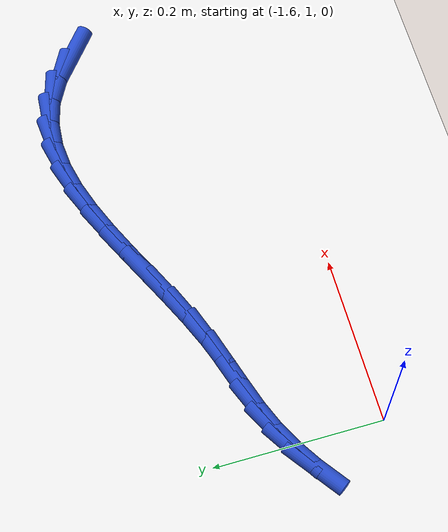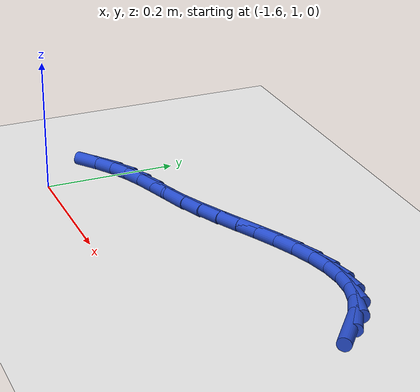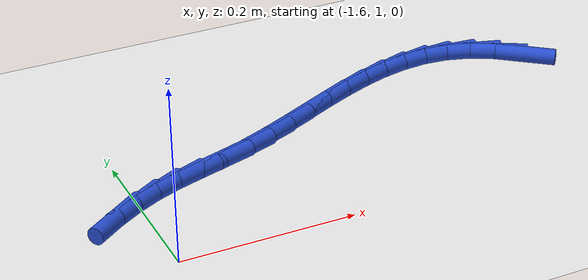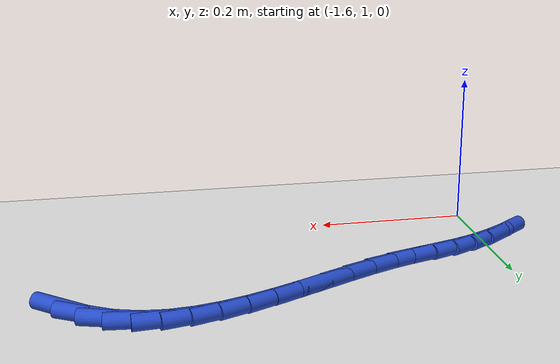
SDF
<sdf version="1.6">
 <world name="default">
  <model name="ground_plane">
   <static>1</static>
   <link name="link">
    <collision name="collision">
     <geometry><plane><normal>0 0 1</normal><size>100 100</size></plane></geometry>
     <surface><friction><ode><mu>100</mu><mu2>50</mu2></ode></friction></surface>
    </collision>
    <visual name="visual">
     <cast_shadows>0</cast_shadows>
     <geometry><plane><normal>0 0 1</normal><size>100 100</size></plane></geometry>
     <material>
      <script><uri>file://media/materials/scripts/gazebo.material</uri><name>Gazebo/WhiteGlow</name></script>
     </material>
    </visual>
   </link>
  </model>
  <model name="line">
   <link name="link_60">
    <pose>-1.052890938393131 1.2215385966492331 0.01 0 1.57 -0.6845613127759893</pose>
    <collision name="collision">
     <geometry><cylinder><radius>0.01</radius><length>0.08</length></cylinder></geometry>
    </collision>
    <visual name="visual">
     <material>
      <script><name>Gazebo/Blue</name><uri>file://media/materials/scripts/gazebo.material</uri></script>
     </material>
     <geometry><cylinder><radius>0.01</radius><length>0.08</length></cylinder></geometry>
    </visual>
   </link>
   <link name="link_61">
    <pose>-1.080222372095285 1.243847427468834 0.01 0 1.57 -0.5073778969088185</pose>
    <collision name="collision">
     <geometry><cylinder><radius>0.01</radius><length>0.08</length></cylinder></geometry>
    </collision>
    <visual name="visual">
     <material>
      <script><name>Gazebo/Blue</name><uri>file://media/materials/scripts/gazebo.material</uri></script>
     </material>
     <geometry><cylinder><radius>0.01</radius><length>0.08</length></cylinder></geometry>
    </visual>
   </link>
   <link name="link_62">
    <pose>-1.1084821198815134 1.259557621418291 0.01 0 1.57 -0.29339753956743103</pose>
    <collision name="collision">
     <geometry><cylinder><radius>0.01</radius><length>0.08</length></cylinder></geometry>
    </collision>
    <visual name="visual">
     <material>
      <script><name>Gazebo/Blue</name><uri>file://media/materials/scripts/gazebo.material</uri></script>
     </material>
     <geometry><cylinder><radius>0.01</radius><length>0.08</length></cylinder></geometry>
    </visual>
   </link>
   <link name="link_63">
    <pose>-1.1376597244283624 1.2683726614763453 0.01 0 1.57 -0.09077441908600027</pose>
    <collision name="collision">
     <geometry><cylinder><radius>0.01</radius><length>0.08</length></cylinder></geometry>
    </collision>
    <visual name="visual">
     <material>
      <script><name>Gazebo/Blue</name><uri>file://media/materials/scripts/gazebo.material</uri></script>
     </material>
     <geometry><cylinder><radius>0.01</radius><length>0.08</length></cylinder></geometry>
    </visual>
   </link>
   <link name="link_64">
    <pose>-1.1676501999012348 1.2711025316266058 0.01 0 1.57 0.08123570845947972</pose>
    <collision name="collision">
     <geometry><cylinder><radius>0.01</radius><length>0.08</length></cylinder></geometry>
    </collision>
    <visual name="visual">
     <material>
      <script><name>Gazebo/Blue</name><uri>file://media/materials/scripts/gazebo.material</uri></script>
     </material>
     <geometry><cylinder><radius>0.01</radius><length>0.08</length></cylinder></geometry>
    </visual>
   </link>
   <link name="link_65">
    <pose>-1.1983446020848367 1.2686035505739883 0.01 0 1.57 0.21617985789622715</pose>
    <collision name="collision">
     <geometry><cylinder><radius>0.01</radius><length>0.08</length></cylinder></geometry>
    </collision>
    <visual name="visual">
     <material>
      <script><name>Gazebo/Blue</name><uri>file://media/materials/scripts/gazebo.material</uri></script>
     </material>
     <geometry><cylinder><radius>0.01</radius><length>0.08</length></cylinder></geometry>
    </visual>
   </link>
   <link name="link_66">
    <pose>-1.2296339867638744 1.2617320370234093 0.01 0 1.57 0.31595913504622336</pose>
    <collision name="collision">
     <geometry><cylinder><radius>0.01</radius><length>0.08</length></cylinder></geometry>
    </collision>
    <visual name="visual">
     <material>
      <script><name>Gazebo/Blue</name><uri>file://media/materials/scripts/gazebo.material</uri></script>
     </material>
     <geometry><cylinder><radius>0.01</radius><length>0.08</length></cylinder></geometry>
    </visual>
   </link>
   <link name="link_67">
    <pose>-1.2614094097230528 1.2513443096797845 0.01 0 1.57 0.385499854535347</pose>
    <collision name="collision">
     <geometry><cylinder><radius>0.01</radius><length>0.08</length></cylinder></geometry>
    </collision>
    <visual name="visual">
     <material>
      <script><name>Gazebo/Blue</name><uri>file://media/materials/scripts/gazebo.material</uri></script>
     </material>
     <geometry><cylinder><radius>0.01</radius><length>0.08</length></cylinder></geometry>
    </visual>
   </link>
   <link name="link_68">
    <pose>-1.2935619267470784 1.23829668724803 0.01 0 1.57 0.42955136815241934</pose>
    <collision name="collision">
     <geometry><cylinder><radius>0.01</radius><length>0.08</length></cylinder></geometry>
    </collision>
    <visual name="visual">
     <material>
      <script><name>Gazebo/Blue</name><uri>file://media/materials/scripts/gazebo.material</uri></script>
     </material>
     <geometry><cylinder><radius>0.01</radius><length>0.08</length></cylinder></geometry>
    </visual>
   </link>
   <link name="link_69">
    <pose>-1.3259825936206564 1.2234454884330612 0.01 0 1.57 0.4515066374205772</pose>
    <collision name="collision">
     <geometry><cylinder><radius>0.01</radius><length>0.08</length></cylinder></geometry>
    </collision>
    <visual name="visual">
     <material>
      <script><name>Gazebo/Blue</name><uri>file://media/materials/scripts/gazebo.material</uri></script>
     </material>
     <geometry><cylinder><radius>0.01</radius><length>0.08</length></cylinder></geometry>
    </visual>
   </link>
   <link name="link_70">
    <pose>-1.3585624661284939 1.2076470319397947 0.01 0 1.57 0.4531569707485363</pose>
    <collision name="collision">
     <geometry><cylinder><radius>0.01</radius><length>0.08</length></cylinder></geometry>
    </collision>
    <visual name="visual">
     <material>
      <script><name>Gazebo/Blue</name><uri>file://media/materials/scripts/gazebo.material</uri></script>
     </material>
     <geometry><cylinder><radius>0.01</radius><length>0.08</length></cylinder></geometry>
    </visual>
   </link>
   <link name="link_71">
    <pose>-1.3911926000552954 1.1917576364731464 0.01 0 1.57 0.43470952182659994</pose>
    <collision name="collision">
     <geometry><cylinder><radius>0.01</radius><length>0.08</length></cylinder></geometry>
    </collision>
    <visual name="visual">
     <material>
      <script><name>Gazebo/Blue</name><uri>file://media/materials/scripts/gazebo.material</uri></script>
     </material>
     <geometry><cylinder><radius>0.01</radius><length>0.08</length></cylinder></geometry>
    </visual>
   </link>
   <link name="link_72">
    <pose>-1.423764051185767 1.1766336207380315 0.01 0 1.57 0.39481015519320395</pose>
    <collision name="collision">
     <geometry><cylinder><radius>0.01</radius><length>0.08</length></cylinder></geometry>
    </collision>
    <visual name="visual">
     <material>
      <script><name>Gazebo/Blue</name><uri>file://media/materials/scripts/gazebo.material</uri></script>
     </material>
     <geometry><cylinder><radius>0.01</radius><length>0.08</length></cylinder></geometry>
    </visual>
   </link>
   <link name="link_73">
    <pose>-1.4561678753046148 1.1631313034393664 0.01 0 1.57 0.33446690330024514</pose>
    <collision name="collision">
     <geometry><cylinder><radius>0.01</radius><length>0.08</length></cylinder></geometry>
    </collision>
    <visual name="visual">
     <material>
      <script><name>Gazebo/Blue</name><uri>file://media/materials/scripts/gazebo.material</uri></script>
     </material>
     <geometry><cylinder><radius>0.01</radius><length>0.08</length></cylinder></geometry>
    </visual>
   </link>
   <link name="link_74">
    <pose>-1.4882762902487077 1.151972873930615 0.01 0 1.57 0.29505179756440403</pose>
    <collision name="collision">
     <geometry><cylinder><radius>0.01</radius><length>0.08</length></cylinder></geometry>
    </collision>
    <visual name="visual">
     <material>
      <script><name>Gazebo/Blue</name><uri>file://media/materials/scripts/gazebo.material</uri></script>
     </material>
     <geometry><cylinder><radius>0.01</radius><length>0.08</length></cylinder></geometry>
    </visual>
   </link>
   <link name="link_75">
    <pose>-1.5197544165003738 1.1424059536297142 0.01 0 1.57 0.3072310267096425</pose>
    <collision name="collision">
     <geometry><cylinder><radius>0.01</radius><length>0.08</length></cylinder></geometry>
    </collision>
    <visual name="visual">
     <material>
      <script><name>Gazebo/Blue</name><uri>file://media/materials/scripts/gazebo.material</uri></script>
     </material>
     <geometry><cylinder><radius>0.01</radius><length>0.08</length></cylinder></geometry>
    </visual>
   </link>
   <link name="link_76">
    <pose>-1.5501392023874183 1.1327655566945654 0.01 0 1.57 0.375468880756981</pose>
    <collision name="collision">
     <geometry><cylinder><radius>0.01</radius><length>0.08</length></cylinder></geometry>
    </collision>
    <visual name="visual">
     <material>
      <script><name>Gazebo/Blue</name><uri>file://media/materials/scripts/gazebo.material</uri></script>
     </material>
     <geometry><cylinder><radius>0.01</radius><length>0.08</length></cylinder></geometry>
    </visual>
   </link>
   <link name="link_77">
    <pose>-1.5789762599097072 1.1213989054660052 0.01 0 1.57 0.4720575145508451</pose>
    <collision name="collision">
     <geometry><cylinder><radius>0.01</radius><length>0.08</length></cylinder></geometry>
    </collision>
    <visual name="visual">
     <material>
      <script><name>Gazebo/Blue</name><uri>file://media/materials/scripts/gazebo.material</uri></script>
     </material>
     <geometry><cylinder><radius>0.01</radius><length>0.08</length></cylinder></geometry>
    </visual>
   </link>
   <link name="link_78">
    <pose>-1.6061655389184002 1.1075172281284862 0.01 0 1.57 0.5576869719665066</pose>
    <collision name="collision">
     <geometry><cylinder><radius>0.01</radius><length>0.08</length></cylinder></geometry>
    </collision>
    <visual name="visual">
     <material>
      <script><name>Gazebo/Blue</name><uri>file://media/materials/scripts/gazebo.material</uri></script>
     </material>
     <geometry><cylinder><radius>0.01</radius><length>0.08</length></cylinder></geometry>
    </visual>
   </link>
   <link name="link_79">
    <pose>-1.632037030401036 1.0913803511278857 0.01 0 1.57 0.6275628884111416</pose>
    <collision name="collision">
     <geometry><cylinder><radius>0.01</radius><length>0.08</length></cylinder></geometry>
    </collision>
    <visual name="visual">
     <material>
      <script><name>Gazebo/Blue</name><uri>file://media/materials/scripts/gazebo.material</uri></script>
     </material>
     <geometry><cylinder><radius>0.01</radius><length>0.08</length></cylinder></geometry>
    </visual>
   </link>
  </model>
 </world>
</sdf>
